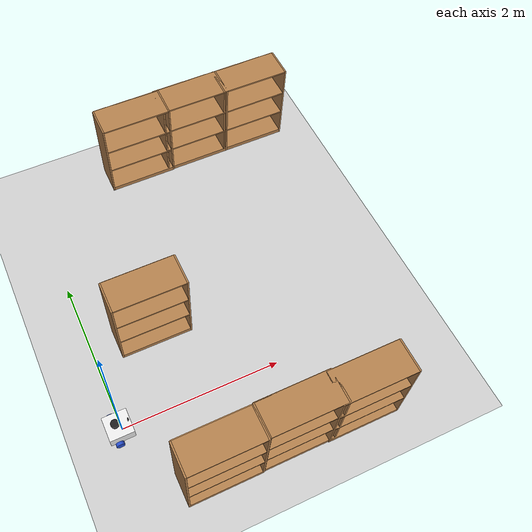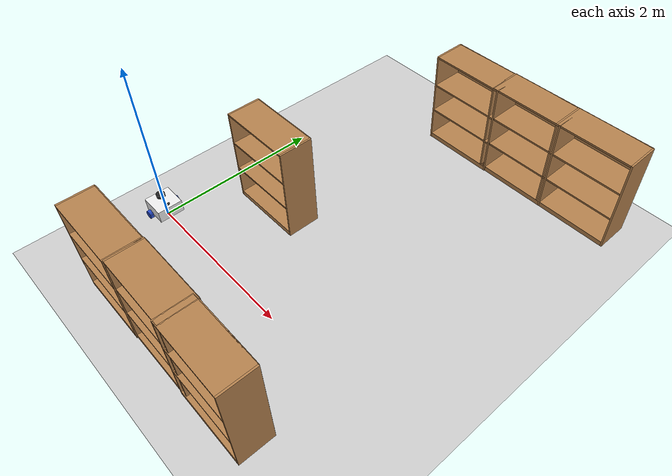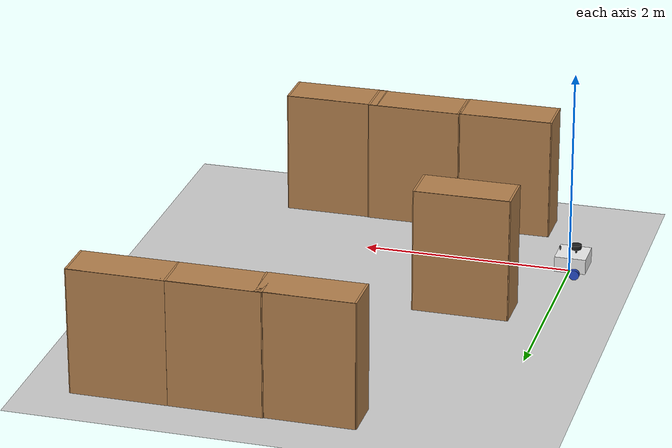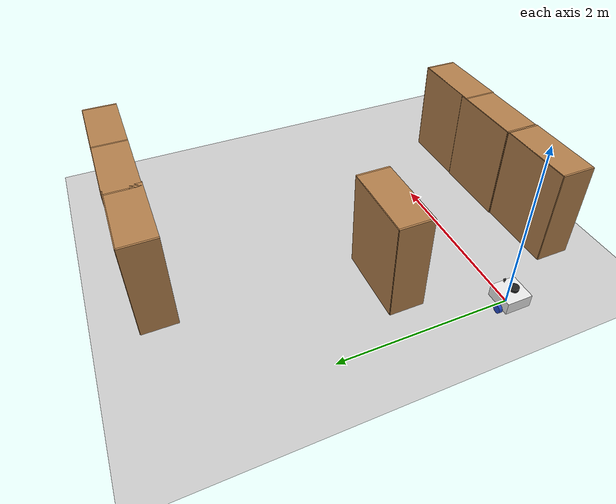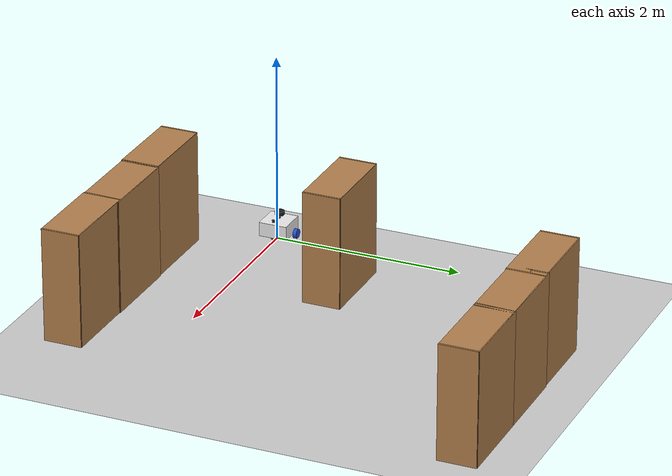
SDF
<sdf version="1.7">
 <world name="default">
  <model name="ground_plane">
   <static>1</static>
   <link name="link">
    <collision name="collision">
     <geometry><plane><normal>0 0 1</normal><size>100 100</size></plane></geometry>
     <surface><friction><ode><mu>100</mu><mu2>50</mu2></ode></friction></surface>
    </collision>
    <visual name="visual">
     <cast_shadows>0</cast_shadows>
     <geometry><plane><normal>0 0 1</normal><size>100 100</size></plane></geometry>
     <material>
      <script><uri>file://media/materials/scripts/gazebo.material</uri><name>Gazebo/Grey</name></script>
     </material>
    </visual>
   </link>
  </model>
  <model name="my_bot">
   <link name="base_link">
    <inertial>
     <pose>0.058857 0 0.083857 0 -0 0</pose>
     <mass>0.7</mass>
     <inertia>
      <ixx>0.00724782</ixx>
      <ixy>0</ixy>
      <ixz>0.00111351</ixz>
      <iyy>0.0080813</iyy>
      <iyz>0</iyz>
      <izz>0.00855849</izz>
     </inertia>
    </inertial>
    <collision name="base_link_fixed_joint_lump__chassis_collision">
     <pose>0.05 0 0.075 0 -0 0</pose>
     <geometry><box><size>0.3 0.3 0.15</size></box></geometry>
    </collision>
    <collision name="base_link_fixed_joint_lump__caster_wheel_collision_1">
     <pose>0.14 0 0 0 -0 0</pose>
     <geometry><sphere><radius>0.05</radius></sphere></geometry>
     <surface><friction><ode><mu>0.001</mu><mu2>0.001</mu2></ode></friction></surface>
    </collision>
    <collision name="base_link_fixed_joint_lump__laser_frame_collision_2">
     <pose>0.022 0 0.212 0 -0 0</pose>
     <geometry><cylinder><length>0.04</length><radius>0.05</radius></cylinder></geometry>
    </collision>
    <visual name="base_link_fixed_joint_lump__chassis_visual">
     <pose>0.05 0 0.075 0 -0 0</pose>
     <geometry><box><size>0.3 0.3 0.15</size></box></geometry>
     <material>
      <script><name>Gazebo/White</name><uri>file://media/materials/scripts/gazebo.material</uri></script>
     </material>
    </visual>
    <visual name="base_link_fixed_joint_lump__camera_link_visual_1">
     <pose>0.176 0 0.181 0 0.18 0</pose>
     <geometry><box><size>0.01 0.03 0.03</size></box></geometry>
     <material>
      <script><name>Gazebo/Black</name><uri>file://media/materials/scripts/gazebo.material</uri></script>
     </material>
    </visual>
    <visual name="base_link_fixed_joint_lump__camera_link_visual_2">
     <pose>0.167049 0 0.131808 0 0.18 0</pose>
     <geometry><cylinder><length>0.1</length><radius>0.002</radius></cylinder></geometry>
     <material>
      <script><name>Gazebo/Black</name><uri>file://media/materials/scripts/gazebo.material</uri></script>
     </material>
    </visual>
    <visual name="base_link_fixed_joint_lump__caster_wheel_visual_3">
     <pose>0.14 0 0 0 -0 0</pose>
     <geometry><sphere><radius>0.05</radius></sphere></geometry>
     <material>
      <script><name>Gazebo/Black</name><uri>file://media/materials/scripts/gazebo.material</uri></script>
     </material>
    </visual>
    <visual name="base_link_fixed_joint_lump__laser_frame_visual_4">
     <pose>0.022 0 0.212 0 -0 0</pose>
     <geometry><cylinder><length>0.04</length><radius>0.05</radius></cylinder></geometry>
     <material>
      <script><name>Gazebo/Black</name><uri>file://media/materials/scripts/gazebo.material</uri></script>
     </material>
    </visual>
    <visual name="base_link_fixed_joint_lump__laser_frame_visual_5">
     <pose>0.022 0 0.162 0 -0 0</pose>
     <geometry><cylinder><length>0.1</length><radius>0.01</radius></cylinder></geometry>
     <material>
      <script><name>Gazebo/Black</name><uri>file://media/materials/scripts/gazebo.material</uri></script>
     </material>
    </visual>
    <sensor name="camera" type="camera">
     <visualize>1</visualize>
     <update_rate>10</update_rate>
     <camera>
      <horizontal_fov>1.089</horizontal_fov>
      <image><format>R8G8B8</format><width>640</width><height>480</height></image>
      <clip><near>0.05</near><far>8</far></clip>
     </camera>
     <plugin name="camera_controller" filename="libgazebo_ros_camera.so">
      <frame_name>camera_link_optical</frame_name>
     </plugin>
     <pose>0.176 0 0.181 0 0.18 0</pose>
    </sensor>
    <sensor name="laser" type="ray">
     <visualize>0</visualize>
     <update_rate>10</update_rate>
     <ray>
      <scan>
       <horizontal>
        <samples>360</samples>
        <min_angle>-3.14</min_angle>
        <max_angle>3.14</max_angle>
        <resolution>1</resolution>
       </horizontal>
       <vertical><samples>1</samples><min_angle>0</min_angle><max_angle>0</max_angle></vertical>
      </scan>
      <range><min>0.3</min><max>12</max></range>
     </ray>
     <plugin name="laser_controller" filename="libgazebo_ros_ray_sensor.so">
      <ros><argument>~/out:=scan</argument></ros>
      <output_type>sensor_msgs/LaserScan</output_type>
      <frame_name>laser_frame</frame_name>
     </plugin>
     <pose>0.022 0 0.212 0 -0 0</pose>
    </sensor>
   </link>
   <joint name="left_wheel_joint" type="revolute">
    <pose relative_to="base_link">0 0.175 0 -1.5708 0 0</pose>
    <parent>base_link</parent>
    <child>left_wheel</child>
    <axis>
     <xyz>0 0 1</xyz>
     <limit><lower>-1e+16</lower><upper>1e+16</upper></limit>
     <dynamics><spring_reference>0</spring_reference><spring_stiffness>0</spring_stiffness></dynamics>
    </axis>
   </joint>
   <link name="left_wheel">
    <pose relative_to="left_wheel_joint">0 0 0 0 -0 0</pose>
    <inertial>
     <mass>0.1</mass>
     <inertia>
      <ixx>7.58333e-05</ixx>
      <ixy>0</ixy>
      <ixz>0</ixz>
      <iyy>7.58333e-05</iyy>
      <iyz>0</iyz>
      <izz>0.000125</izz>
     </inertia>
    </inertial>
    <collision name="left_wheel_collision">
     <geometry><cylinder><length>0.04</length><radius>0.05</radius></cylinder></geometry>
    </collision>
    <visual name="left_wheel_visual">
     <geometry><cylinder><length>0.04</length><radius>0.05</radius></cylinder></geometry>
     <material>
      <script><name>Gazebo/Blue</name><uri>file://media/materials/scripts/gazebo.material</uri></script>
     </material>
    </visual>
   </link>
   <joint name="right_wheel_joint" type="revolute">
    <pose relative_to="base_link">0 -0.175 0 1.5708 -0 0</pose>
    <parent>base_link</parent>
    <child>right_wheel</child>
    <axis>
     <xyz>0 0 -1</xyz>
     <limit><lower>-1e+16</lower><upper>1e+16</upper></limit>
     <dynamics><spring_reference>0</spring_reference><spring_stiffness>0</spring_stiffness></dynamics>
    </axis>
   </joint>
   <link name="right_wheel">
    <pose relative_to="right_wheel_joint">0 0 0 0 -0 0</pose>
    <inertial>
     <mass>0.1</mass>
     <inertia>
      <ixx>7.58333e-05</ixx>
      <ixy>0</ixy>
      <ixz>0</ixz>
      <iyy>7.58333e-05</iyy>
      <iyz>0</iyz>
      <izz>0.000125</izz>
     </inertia>
    </inertial>
    <collision name="right_wheel_collision">
     <geometry><cylinder><length>0.04</length><radius>0.05</radius></cylinder></geometry>
    </collision>
    <visual name="right_wheel_visual">
     <geometry><cylinder><length>0.04</length><radius>0.05</radius></cylinder></geometry>
     <material>
      <script><name>Gazebo/Blue</name><uri>file://media/materials/scripts/gazebo.material</uri></script>
     </material>
    </visual>
   </link>
   <static>0</static>
   <plugin name="diff_drive" filename="libgazebo_ros_diff_drive.so">
    <left_joint>left_wheel_joint</left_joint>
    <right_joint>right_wheel_joint</right_joint>
    <wheel_separation>0.35</wheel_separation>
    <wheel_diameter>0.1</wheel_diameter>
    <max_wheel_torque>200</max_wheel_torque>
    <max_wheel_acceleration>10.0</max_wheel_acceleration>
    <odometry_frame>odom</odometry_frame>
    <robot_base_frame>base_footprint</robot_base_frame>
    <publish_odom>1</publish_odom>
    <publish_odom_tf>1</publish_odom_tf>
    <publish_wheel_tf>1</publish_wheel_tf>
   </plugin>
   <pose>-0.0821 0.000535 0.050001 0 5e-06 0.000225</pose>
  </model>
  <model name="bookshelf">
   <static>1</static>
   <link name="link">
    <inertial><mass>1</mass></inertial>
    <collision name="back">
     <pose>0 0.005 0.6 0 -0 0</pose>
     <geometry><box><size>0.9 0.01 1.2</size></box></geometry>
    </collision>
    <visual name="visual1">
     <pose>0 0.005 0.6 0 -0 0</pose>
     <geometry><box><size>0.9 0.01 1.2</size></box></geometry>
     <material>
      <script><uri>file://media/materials/scripts/gazebo.material</uri><name>Gazebo/Wood</name></script>
     </material>
    </visual>
    <collision name="left_side">
     <pose>0.45 -0.195 0.6 0 -0 0</pose>
     <geometry><box><size>0.02 0.4 1.2</size></box></geometry>
    </collision>
    <visual name="visual2">
     <pose>0.45 -0.195 0.6 0 -0 0</pose>
     <geometry><box><size>0.02 0.4 1.2</size></box></geometry>
     <material>
      <script><uri>file://media/materials/scripts/gazebo.material</uri><name>Gazebo/Wood</name></script>
     </material>
    </visual>
    <collision name="right_side">
     <pose>-0.45 -0.195 0.6 0 -0 0</pose>
     <geometry><box><size>0.02 0.4 1.2</size></box></geometry>
    </collision>
    <visual name="visual3">
     <pose>-0.45 -0.195 0.6 0 -0 0</pose>
     <geometry><box><size>0.02 0.4 1.2</size></box></geometry>
     <material>
      <script><uri>file://media/materials/scripts/gazebo.material</uri><name>Gazebo/Wood</name></script>
     </material>
    </visual>
    <collision name="bottom">
     <pose>0 -0.195 0.03 0 -0 0</pose>
     <geometry><box><size>0.88 0.4 0.06</size></box></geometry>
    </collision>
    <visual name="visual4">
     <pose>0 -0.195 0.03 0 -0 0</pose>
     <geometry><box><size>0.88 0.4 0.06</size></box></geometry>
     <material>
      <script><uri>file://media/materials/scripts/gazebo.material</uri><name>Gazebo/Wood</name></script>
     </material>
    </visual>
    <collision name="top">
     <pose>0 -0.195 1.19 0 -0 0</pose>
     <geometry><box><size>0.88 0.4 0.02</size></box></geometry>
    </collision>
    <visual name="visual5">
     <pose>0 -0.195 1.19 0 -0 0</pose>
     <geometry><box><size>0.88 0.4 0.02</size></box></geometry>
     <material>
      <script><uri>file://media/materials/scripts/gazebo.material</uri><name>Gazebo/Wood</name></script>
     </material>
    </visual>
    <collision name="low_shelf">
     <pose>0 -0.195 0.43 0 -0 0</pose>
     <geometry><box><size>0.88 0.4 0.02</size></box></geometry>
    </collision>
    <visual name="visual6">
     <pose>0 -0.195 0.43 0 -0 0</pose>
     <geometry><box><size>0.88 0.4 0.02</size></box></geometry>
     <material>
      <script><uri>file://media/materials/scripts/gazebo.material</uri><name>Gazebo/Wood</name></script>
     </material>
    </visual>
    <collision name="high_shelf">
     <pose>0 -0.195 0.8 0 -0 0</pose>
     <geometry><box><size>0.88 0.4 0.02</size></box></geometry>
    </collision>
    <visual name="visual7">
     <pose>0 -0.195 0.8 0 -0 0</pose>
     <geometry><box><size>0.88 0.4 0.02</size></box></geometry>
     <material>
      <script><uri>file://media/materials/scripts/gazebo.material</uri><name>Gazebo/Wood</name></script>
     </material>
    </visual>
   </link>
   <pose>0.779347 1.22857 0 0 -0 0</pose>
  </model>
  <model name="bookshelf_0">
   <static>1</static>
   <link name="link">
    <inertial><mass>1</mass></inertial>
    <collision name="back">
     <pose>0 0.005 0.6 0 -0 0</pose>
     <geometry><box><size>0.9 0.01 1.2</size></box></geometry>
    </collision>
    <visual name="visual1">
     <pose>0 0.005 0.6 0 -0 0</pose>
     <geometry><box><size>0.9 0.01 1.2</size></box></geometry>
     <material>
      <script><uri>file://media/materials/scripts/gazebo.material</uri><name>Gazebo/Wood</name></script>
     </material>
    </visual>
    <collision name="left_side">
     <pose>0.45 -0.195 0.6 0 -0 0</pose>
     <geometry><box><size>0.02 0.4 1.2</size></box></geometry>
    </collision>
    <visual name="visual2">
     <pose>0.45 -0.195 0.6 0 -0 0</pose>
     <geometry><box><size>0.02 0.4 1.2</size></box></geometry>
     <material>
      <script><uri>file://media/materials/scripts/gazebo.material</uri><name>Gazebo/Wood</name></script>
     </material>
    </visual>
    <collision name="right_side">
     <pose>-0.45 -0.195 0.6 0 -0 0</pose>
     <geometry><box><size>0.02 0.4 1.2</size></box></geometry>
    </collision>
    <visual name="visual3">
     <pose>-0.45 -0.195 0.6 0 -0 0</pose>
     <geometry><box><size>0.02 0.4 1.2</size></box></geometry>
     <material>
      <script><uri>file://media/materials/scripts/gazebo.material</uri><name>Gazebo/Wood</name></script>
     </material>
    </visual>
    <collision name="bottom">
     <pose>0 -0.195 0.03 0 -0 0</pose>
     <geometry><box><size>0.88 0.4 0.06</size></box></geometry>
    </collision>
    <visual name="visual4">
     <pose>0 -0.195 0.03 0 -0 0</pose>
     <geometry><box><size>0.88 0.4 0.06</size></box></geometry>
     <material>
      <script><uri>file://media/materials/scripts/gazebo.material</uri><name>Gazebo/Wood</name></script>
     </material>
    </visual>
    <collision name="top">
     <pose>0 -0.195 1.19 0 -0 0</pose>
     <geometry><box><size>0.88 0.4 0.02</size></box></geometry>
    </collision>
    <visual name="visual5">
     <pose>0 -0.195 1.19 0 -0 0</pose>
     <geometry><box><size>0.88 0.4 0.02</size></box></geometry>
     <material>
      <script><uri>file://media/materials/scripts/gazebo.material</uri><name>Gazebo/Wood</name></script>
     </material>
    </visual>
    <collision name="low_shelf">
     <pose>0 -0.195 0.43 0 -0 0</pose>
     <geometry><box><size>0.88 0.4 0.02</size></box></geometry>
    </collision>
    <visual name="visual6">
     <pose>0 -0.195 0.43 0 -0 0</pose>
     <geometry><box><size>0.88 0.4 0.02</size></box></geometry>
     <material>
      <script><uri>file://media/materials/scripts/gazebo.material</uri><name>Gazebo/Wood</name></script>
     </material>
    </visual>
    <collision name="high_shelf">
     <pose>0 -0.195 0.8 0 -0 0</pose>
     <geometry><box><size>0.88 0.4 0.02</size></box></geometry>
    </collision>
    <visual name="visual7">
     <pose>0 -0.195 0.8 0 -0 0</pose>
     <geometry><box><size>0.88 0.4 0.02</size></box></geometry>
     <material>
      <script><uri>file://media/materials/scripts/gazebo.material</uri><name>Gazebo/Wood</name></script>
     </material>
    </visual>
   </link>
   <pose>0.816353 -0.725821 0 0 -0 0</pose>
  </model>
  <model name="bookshelf_1">
   <static>1</static>
   <link name="link">
    <inertial><mass>1</mass></inertial>
    <collision name="back">
     <pose>0 0.005 0.6 0 -0 0</pose>
     <geometry><box><size>0.9 0.01 1.2</size></box></geometry>
    </collision>
    <visual name="visual1">
     <pose>0 0.005 0.6 0 -0 0</pose>
     <geometry><box><size>0.9 0.01 1.2</size></box></geometry>
     <material>
      <script><uri>file://media/materials/scripts/gazebo.material</uri><name>Gazebo/Wood</name></script>
     </material>
    </visual>
    <collision name="left_side">
     <pose>0.45 -0.195 0.6 0 -0 0</pose>
     <geometry><box><size>0.02 0.4 1.2</size></box></geometry>
    </collision>
    <visual name="visual2">
     <pose>0.45 -0.195 0.6 0 -0 0</pose>
     <geometry><box><size>0.02 0.4 1.2</size></box></geometry>
     <material>
      <script><uri>file://media/materials/scripts/gazebo.material</uri><name>Gazebo/Wood</name></script>
     </material>
    </visual>
    <collision name="right_side">
     <pose>-0.45 -0.195 0.6 0 -0 0</pose>
     <geometry><box><size>0.02 0.4 1.2</size></box></geometry>
    </collision>
    <visual name="visual3">
     <pose>-0.45 -0.195 0.6 0 -0 0</pose>
     <geometry><box><size>0.02 0.4 1.2</size></box></geometry>
     <material>
      <script><uri>file://media/materials/scripts/gazebo.material</uri><name>Gazebo/Wood</name></script>
     </material>
    </visual>
    <collision name="bottom">
     <pose>0 -0.195 0.03 0 -0 0</pose>
     <geometry><box><size>0.88 0.4 0.06</size></box></geometry>
    </collision>
    <visual name="visual4">
     <pose>0 -0.195 0.03 0 -0 0</pose>
     <geometry><box><size>0.88 0.4 0.06</size></box></geometry>
     <material>
      <script><uri>file://media/materials/scripts/gazebo.material</uri><name>Gazebo/Wood</name></script>
     </material>
    </visual>
    <collision name="top">
     <pose>0 -0.195 1.19 0 -0 0</pose>
     <geometry><box><size>0.88 0.4 0.02</size></box></geometry>
    </collision>
    <visual name="visual5">
     <pose>0 -0.195 1.19 0 -0 0</pose>
     <geometry><box><size>0.88 0.4 0.02</size></box></geometry>
     <material>
      <script><uri>file://media/materials/scripts/gazebo.material</uri><name>Gazebo/Wood</name></script>
     </material>
    </visual>
    <collision name="low_shelf">
     <pose>0 -0.195 0.43 0 -0 0</pose>
     <geometry><box><size>0.88 0.4 0.02</size></box></geometry>
    </collision>
    <visual name="visual6">
     <pose>0 -0.195 0.43 0 -0 0</pose>
     <geometry><box><size>0.88 0.4 0.02</size></box></geometry>
     <material>
      <script><uri>file://media/materials/scripts/gazebo.material</uri><name>Gazebo/Wood</name></script>
     </material>
    </visual>
    <collision name="high_shelf">
     <pose>0 -0.195 0.8 0 -0 0</pose>
     <geometry><box><size>0.88 0.4 0.02</size></box></geometry>
    </collision>
    <visual name="visual7">
     <pose>0 -0.195 0.8 0 -0 0</pose>
     <geometry><box><size>0.88 0.4 0.02</size></box></geometry>
     <material>
      <script><uri>file://media/materials/scripts/gazebo.material</uri><name>Gazebo/Wood</name></script>
     </material>
    </visual>
   </link>
   <pose>1.72847 -0.715949 0 0 -0 0</pose>
  </model>
  <model name="bookshelf_2">
   <static>1</static>
   <link name="link">
    <inertial><mass>1</mass></inertial>
    <collision name="back">
     <pose>0 0.005 0.6 0 -0 0</pose>
     <geometry><box><size>0.9 0.01 1.2</size></box></geometry>
    </collision>
    <visual name="visual1">
     <pose>0 0.005 0.6 0 -0 0</pose>
     <geometry><box><size>0.9 0.01 1.2</size></box></geometry>
     <material>
      <script><uri>file://media/materials/scripts/gazebo.material</uri><name>Gazebo/Wood</name></script>
     </material>
    </visual>
    <collision name="left_side">
     <pose>0.45 -0.195 0.6 0 -0 0</pose>
     <geometry><box><size>0.02 0.4 1.2</size></box></geometry>
    </collision>
    <visual name="visual2">
     <pose>0.45 -0.195 0.6 0 -0 0</pose>
     <geometry><box><size>0.02 0.4 1.2</size></box></geometry>
     <material>
      <script><uri>file://media/materials/scripts/gazebo.material</uri><name>Gazebo/Wood</name></script>
     </material>
    </visual>
    <collision name="right_side">
     <pose>-0.45 -0.195 0.6 0 -0 0</pose>
     <geometry><box><size>0.02 0.4 1.2</size></box></geometry>
    </collision>
    <visual name="visual3">
     <pose>-0.45 -0.195 0.6 0 -0 0</pose>
     <geometry><box><size>0.02 0.4 1.2</size></box></geometry>
     <material>
      <script><uri>file://media/materials/scripts/gazebo.material</uri><name>Gazebo/Wood</name></script>
     </material>
    </visual>
    <collision name="bottom">
     <pose>0 -0.195 0.03 0 -0 0</pose>
     <geometry><box><size>0.88 0.4 0.06</size></box></geometry>
    </collision>
    <visual name="visual4">
     <pose>0 -0.195 0.03 0 -0 0</pose>
     <geometry><box><size>0.88 0.4 0.06</size></box></geometry>
     <material>
      <script><uri>file://media/materials/scripts/gazebo.material</uri><name>Gazebo/Wood</name></script>
     </material>
    </visual>
    <collision name="top">
     <pose>0 -0.195 1.19 0 -0 0</pose>
     <geometry><box><size>0.88 0.4 0.02</size></box></geometry>
    </collision>
    <visual name="visual5">
     <pose>0 -0.195 1.19 0 -0 0</pose>
     <geometry><box><size>0.88 0.4 0.02</size></box></geometry>
     <material>
      <script><uri>file://media/materials/scripts/gazebo.material</uri><name>Gazebo/Wood</name></script>
     </material>
    </visual>
    <collision name="low_shelf">
     <pose>0 -0.195 0.43 0 -0 0</pose>
     <geometry><box><size>0.88 0.4 0.02</size></box></geometry>
    </collision>
    <visual name="visual6">
     <pose>0 -0.195 0.43 0 -0 0</pose>
     <geometry><box><size>0.88 0.4 0.02</size></box></geometry>
     <material>
      <script><uri>file://media/materials/scripts/gazebo.material</uri><name>Gazebo/Wood</name></script>
     </material>
    </visual>
    <collision name="high_shelf">
     <pose>0 -0.195 0.8 0 -0 0</pose>
     <geometry><box><size>0.88 0.4 0.02</size></box></geometry>
    </collision>
    <visual name="visual7">
     <pose>0 -0.195 0.8 0 -0 0</pose>
     <geometry><box><size>0.88 0.4 0.02</size></box></geometry>
     <material>
      <script><uri>file://media/materials/scripts/gazebo.material</uri><name>Gazebo/Wood</name></script>
     </material>
    </visual>
   </link>
   <pose>2.55549 -0.725587 0 0 -0 0</pose>
  </model>
  <model name="bookshelf_3">
   <static>1</static>
   <link name="link">
    <inertial><mass>1</mass></inertial>
    <collision name="back">
     <pose>0 0.005 0.6 0 -0 0</pose>
     <geometry><box><size>0.9 0.01 1.2</size></box></geometry>
    </collision>
    <visual name="visual1">
     <pose>0 0.005 0.6 0 -0 0</pose>
     <geometry><box><size>0.9 0.01 1.2</size></box></geometry>
     <material>
      <script><uri>file://media/materials/scripts/gazebo.material</uri><name>Gazebo/Wood</name></script>
     </material>
    </visual>
    <collision name="left_side">
     <pose>0.45 -0.195 0.6 0 -0 0</pose>
     <geometry><box><size>0.02 0.4 1.2</size></box></geometry>
    </collision>
    <visual name="visual2">
     <pose>0.45 -0.195 0.6 0 -0 0</pose>
     <geometry><box><size>0.02 0.4 1.2</size></box></geometry>
     <material>
      <script><uri>file://media/materials/scripts/gazebo.material</uri><name>Gazebo/Wood</name></script>
     </material>
    </visual>
    <collision name="right_side">
     <pose>-0.45 -0.195 0.6 0 -0 0</pose>
     <geometry><box><size>0.02 0.4 1.2</size></box></geometry>
    </collision>
    <visual name="visual3">
     <pose>-0.45 -0.195 0.6 0 -0 0</pose>
     <geometry><box><size>0.02 0.4 1.2</size></box></geometry>
     <material>
      <script><uri>file://media/materials/scripts/gazebo.material</uri><name>Gazebo/Wood</name></script>
     </material>
    </visual>
    <collision name="bottom">
     <pose>0 -0.195 0.03 0 -0 0</pose>
     <geometry><box><size>0.88 0.4 0.06</size></box></geometry>
    </collision>
    <visual name="visual4">
     <pose>0 -0.195 0.03 0 -0 0</pose>
     <geometry><box><size>0.88 0.4 0.06</size></box></geometry>
     <material>
      <script><uri>file://media/materials/scripts/gazebo.material</uri><name>Gazebo/Wood</name></script>
     </material>
    </visual>
    <collision name="top">
     <pose>0 -0.195 1.19 0 -0 0</pose>
     <geometry><box><size>0.88 0.4 0.02</size></box></geometry>
    </collision>
    <visual name="visual5">
     <pose>0 -0.195 1.19 0 -0 0</pose>
     <geometry><box><size>0.88 0.4 0.02</size></box></geometry>
     <material>
      <script><uri>file://media/materials/scripts/gazebo.material</uri><name>Gazebo/Wood</name></script>
     </material>
    </visual>
    <collision name="low_shelf">
     <pose>0 -0.195 0.43 0 -0 0</pose>
     <geometry><box><size>0.88 0.4 0.02</size></box></geometry>
    </collision>
    <visual name="visual6">
     <pose>0 -0.195 0.43 0 -0 0</pose>
     <geometry><box><size>0.88 0.4 0.02</size></box></geometry>
     <material>
      <script><uri>file://media/materials/scripts/gazebo.material</uri><name>Gazebo/Wood</name></script>
     </material>
    </visual>
    <collision name="high_shelf">
     <pose>0 -0.195 0.8 0 -0 0</pose>
     <geometry><box><size>0.88 0.4 0.02</size></box></geometry>
    </collision>
    <visual name="visual7">
     <pose>0 -0.195 0.8 0 -0 0</pose>
     <geometry><box><size>0.88 0.4 0.02</size></box></geometry>
     <material>
      <script><uri>file://media/materials/scripts/gazebo.material</uri><name>Gazebo/Wood</name></script>
     </material>
    </visual>
   </link>
   <pose>1.55632 3.66766 0 0 -0 0</pose>
  </model>
  <model name="bookshelf_4">
   <static>1</static>
   <link name="link">
    <inertial><mass>1</mass></inertial>
    <collision name="back">
     <pose>0 0.005 0.6 0 -0 0</pose>
     <geometry><box><size>0.9 0.01 1.2</size></box></geometry>
    </collision>
    <visual name="visual1">
     <pose>0 0.005 0.6 0 -0 0</pose>
     <geometry><box><size>0.9 0.01 1.2</size></box></geometry>
     <material>
      <script><uri>file://media/materials/scripts/gazebo.material</uri><name>Gazebo/Wood</name></script>
     </material>
    </visual>
    <collision name="left_side">
     <pose>0.45 -0.195 0.6 0 -0 0</pose>
     <geometry><box><size>0.02 0.4 1.2</size></box></geometry>
    </collision>
    <visual name="visual2">
     <pose>0.45 -0.195 0.6 0 -0 0</pose>
     <geometry><box><size>0.02 0.4 1.2</size></box></geometry>
     <material>
      <script><uri>file://media/materials/scripts/gazebo.material</uri><name>Gazebo/Wood</name></script>
     </material>
    </visual>
    <collision name="right_side">
     <pose>-0.45 -0.195 0.6 0 -0 0</pose>
     <geometry><box><size>0.02 0.4 1.2</size></box></geometry>
    </collision>
    <visual name="visual3">
     <pose>-0.45 -0.195 0.6 0 -0 0</pose>
     <geometry><box><size>0.02 0.4 1.2</size></box></geometry>
     <material>
      <script><uri>file://media/materials/scripts/gazebo.material</uri><name>Gazebo/Wood</name></script>
     </material>
    </visual>
    <collision name="bottom">
     <pose>0 -0.195 0.03 0 -0 0</pose>
     <geometry><box><size>0.88 0.4 0.06</size></box></geometry>
    </collision>
    <visual name="visual4">
     <pose>0 -0.195 0.03 0 -0 0</pose>
     <geometry><box><size>0.88 0.4 0.06</size></box></geometry>
     <material>
      <script><uri>file://media/materials/scripts/gazebo.material</uri><name>Gazebo/Wood</name></script>
     </material>
    </visual>
    <collision name="top">
     <pose>0 -0.195 1.19 0 -0 0</pose>
     <geometry><box><size>0.88 0.4 0.02</size></box></geometry>
    </collision>
    <visual name="visual5">
     <pose>0 -0.195 1.19 0 -0 0</pose>
     <geometry><box><size>0.88 0.4 0.02</size></box></geometry>
     <material>
      <script><uri>file://media/materials/scripts/gazebo.material</uri><name>Gazebo/Wood</name></script>
     </material>
    </visual>
    <collision name="low_shelf">
     <pose>0 -0.195 0.43 0 -0 0</pose>
     <geometry><box><size>0.88 0.4 0.02</size></box></geometry>
    </collision>
    <visual name="visual6">
     <pose>0 -0.195 0.43 0 -0 0</pose>
     <geometry><box><size>0.88 0.4 0.02</size></box></geometry>
     <material>
      <script><uri>file://media/materials/scripts/gazebo.material</uri><name>Gazebo/Wood</name></script>
     </material>
    </visual>
    <collision name="high_shelf">
     <pose>0 -0.195 0.8 0 -0 0</pose>
     <geometry><box><size>0.88 0.4 0.02</size></box></geometry>
    </collision>
    <visual name="visual7">
     <pose>0 -0.195 0.8 0 -0 0</pose>
     <geometry><box><size>0.88 0.4 0.02</size></box></geometry>
     <material>
      <script><uri>file://media/materials/scripts/gazebo.material</uri><name>Gazebo/Wood</name></script>
     </material>
    </visual>
   </link>
   <pose>2.38942 3.67676 0 0 -0 0</pose>
  </model>
  <model name="bookshelf_5">
   <static>1</static>
   <link name="link">
    <inertial><mass>1</mass></inertial>
    <collision name="back">
     <pose>0 0.005 0.6 0 -0 0</pose>
     <geometry><box><size>0.9 0.01 1.2</size></box></geometry>
    </collision>
    <visual name="visual1">
     <pose>0 0.005 0.6 0 -0 0</pose>
     <geometry><box><size>0.9 0.01 1.2</size></box></geometry>
     <material>
      <script><uri>file://media/materials/scripts/gazebo.material</uri><name>Gazebo/Wood</name></script>
     </material>
    </visual>
    <collision name="left_side">
     <pose>0.45 -0.195 0.6 0 -0 0</pose>
     <geometry><box><size>0.02 0.4 1.2</size></box></geometry>
    </collision>
    <visual name="visual2">
     <pose>0.45 -0.195 0.6 0 -0 0</pose>
     <geometry><box><size>0.02 0.4 1.2</size></box></geometry>
     <material>
      <script><uri>file://media/materials/scripts/gazebo.material</uri><name>Gazebo/Wood</name></script>
     </material>
    </visual>
    <collision name="right_side">
     <pose>-0.45 -0.195 0.6 0 -0 0</pose>
     <geometry><box><size>0.02 0.4 1.2</size></box></geometry>
    </collision>
    <visual name="visual3">
     <pose>-0.45 -0.195 0.6 0 -0 0</pose>
     <geometry><box><size>0.02 0.4 1.2</size></box></geometry>
     <material>
      <script><uri>file://media/materials/scripts/gazebo.material</uri><name>Gazebo/Wood</name></script>
     </material>
    </visual>
    <collision name="bottom">
     <pose>0 -0.195 0.03 0 -0 0</pose>
     <geometry><box><size>0.88 0.4 0.06</size></box></geometry>
    </collision>
    <visual name="visual4">
     <pose>0 -0.195 0.03 0 -0 0</pose>
     <geometry><box><size>0.88 0.4 0.06</size></box></geometry>
     <material>
      <script><uri>file://media/materials/scripts/gazebo.material</uri><name>Gazebo/Wood</name></script>
     </material>
    </visual>
    <collision name="top">
     <pose>0 -0.195 1.19 0 -0 0</pose>
     <geometry><box><size>0.88 0.4 0.02</size></box></geometry>
    </collision>
    <visual name="visual5">
     <pose>0 -0.195 1.19 0 -0 0</pose>
     <geometry><box><size>0.88 0.4 0.02</size></box></geometry>
     <material>
      <script><uri>file://media/materials/scripts/gazebo.material</uri><name>Gazebo/Wood</name></script>
     </material>
    </visual>
    <collision name="low_shelf">
     <pose>0 -0.195 0.43 0 -0 0</pose>
     <geometry><box><size>0.88 0.4 0.02</size></box></geometry>
    </collision>
    <visual name="visual6">
     <pose>0 -0.195 0.43 0 -0 0</pose>
     <geometry><box><size>0.88 0.4 0.02</size></box></geometry>
     <material>
      <script><uri>file://media/materials/scripts/gazebo.material</uri><name>Gazebo/Wood</name></script>
     </material>
    </visual>
    <collision name="high_shelf">
     <pose>0 -0.195 0.8 0 -0 0</pose>
     <geometry><box><size>0.88 0.4 0.02</size></box></geometry>
    </collision>
    <visual name="visual7">
     <pose>0 -0.195 0.8 0 -0 0</pose>
     <geometry><box><size>0.88 0.4 0.02</size></box></geometry>
     <material>
      <script><uri>file://media/materials/scripts/gazebo.material</uri><name>Gazebo/Wood</name></script>
     </material>
    </visual>
   </link>
   <pose>3.25184 3.67767 0 0 -0 0</pose>
  </model>
 </world>
</sdf>
